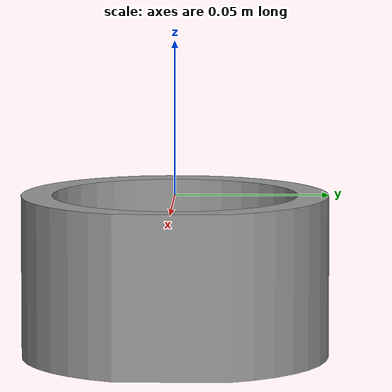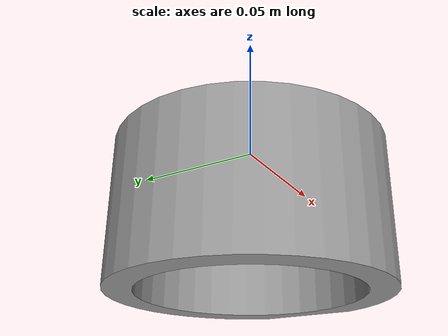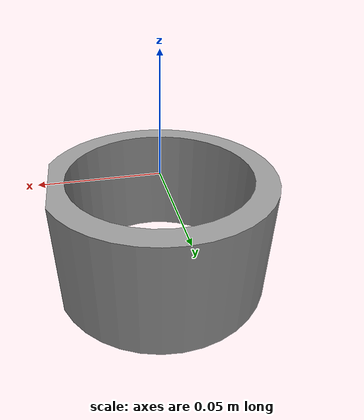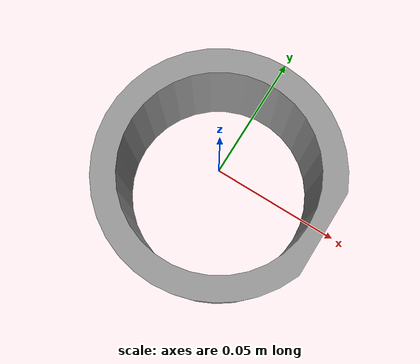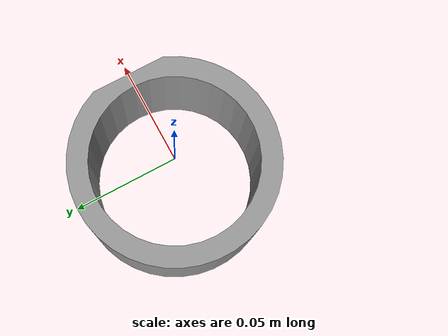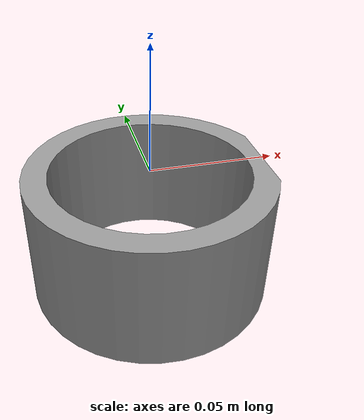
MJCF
<mujoco model="wrist_adapter">
    <compiler angle="radian" meshdir="assets"/>

  <asset>
    <mesh name="wrist_adapter_mesh" file="hand_mounting_alegro.stl" scale="0.001 0.001 0.001"/>
  </asset>

  <worldbody>
    <body name="wrist_adapter">

      <inertial mass="0.17433"
                pos="-0.00151 0.0 -0.02650"
                fullinertia="2.248e-4 2.121e-4 3.553e-4 0.0 0.0 0.0"/>

      <!-- collision geometry -->
      <geom name="wrist_adapter_col"
            type="mesh"
            mesh="wrist_adapter_mesh"
            contype="1"
            conaffinity="1"
            rgba="0.6 0.6 0.6 1"/>

      <!-- visual geometry (same mesh, no collision) -->
      <geom name="wrist_adapter_vis"
            type="mesh"
            mesh="wrist_adapter_mesh"
            contype="0"
            conaffinity="0"
            rgba="0.7 0.7 0.7 1"/>

    </body>
  </worldbody>

</mujoco>
